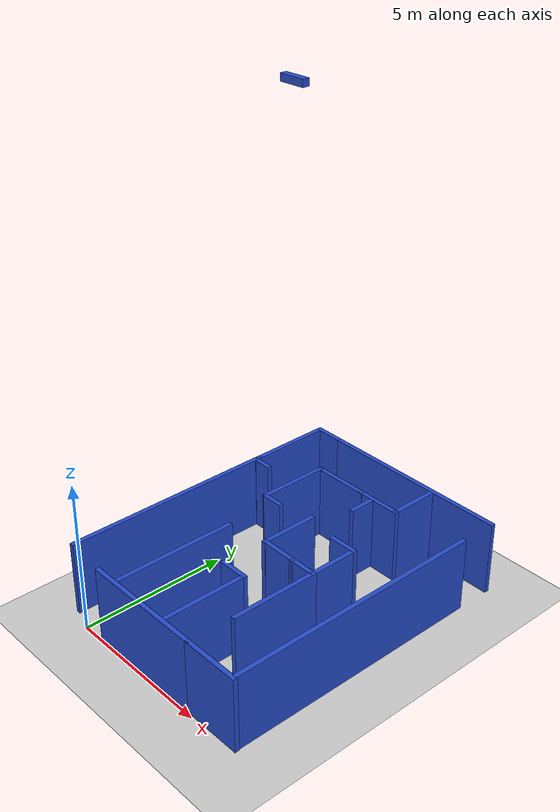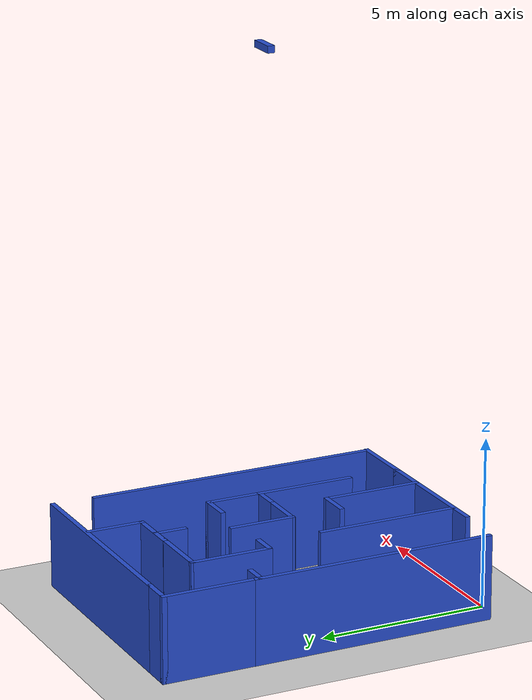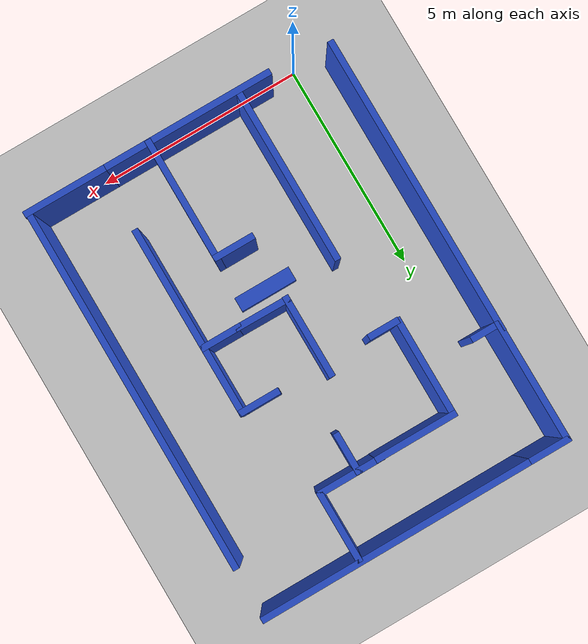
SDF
<sdf version="1.7">
 <world name="default">
  <light name="sun" type="directional">
   <pose>0 0 10 0 -0 0</pose>
   <diffuse>0.8 0.8 0.8 1</diffuse>
   <specular>0.2 0.2 0.2 1</specular>
   <attenuation>
    <range>1000</range>
    <constant>0.9</constant>
    <linear>0.01</linear>
    <quadratic>0.001</quadratic>
   </attenuation>
   <direction>-0.5 0.1 -0.9</direction>
   <spot><inner_angle>0</inner_angle><outer_angle>0</outer_angle><falloff>0</falloff></spot>
  </light>
  <model name="ground_plane">
   <static>1</static>
   <link name="link">
    <collision name="collision">
     <geometry><plane><normal>0 0 1</normal><size>100 100</size></plane></geometry>
     <surface><friction><ode><mu>100</mu><mu2>50</mu2></ode></friction></surface>
    </collision>
    <visual name="visual">
     <cast_shadows>0</cast_shadows>
     <geometry><plane><normal>0 0 1</normal><size>100 100</size></plane></geometry>
     <material>
      <script><uri>file://media/materials/scripts/gazebo.material</uri><name>Gazebo/Grey</name></script>
     </material>
    </visual>
   </link>
  </model>
  <gravity>0 0 -9.8</gravity>
  <magnetic_field>6e-06 2.3e-05 -4.2e-05</magnetic_field>
  <atmosphere type="adiabatic"/>
  <physics type="ode">
   <max_step_size>0.001</max_step_size>
   <real_time_factor>1</real_time_factor>
   <real_time_update_rate>1000</real_time_update_rate>
  </physics>
  <scene><ambient>0.4 0.4 0.4 1</ambient><background>0.7 0.7 0.7 1</background><shadows>0</shadows></scene>
  <spherical_coordinates>
   <surface_model>EARTH_WGS84</surface_model>
   <latitude_deg>0</latitude_deg>
   <longitude_deg>0</longitude_deg>
   <elevation>0</elevation>
   <heading_deg>0</heading_deg>
  </spherical_coordinates>
  <model name="mini">
   <link name="base_footprint">
    <inertial>
     <pose>0.007288 0 0.026334 0 -0 0</pose>
     <mass>0.77692</mass>
     <inertia>
      <ixx>0.000207</ixx>
      <ixy>-3.00927e-36</ixy>
      <ixz>-4.8e-05</ixz>
      <iyy>0.000474</iyy>
      <iyz>0</iyz>
      <izz>0.00056</izz>
     </inertia>
    </inertial>
    <collision name="base_footprint_fixed_joint_lump__base_link_collision">
     <pose>0 0 0.005 0 -0 0</pose>
     <geometry>
      <mesh>
       <scale>0.001 0.001 0.001</scale>
       <uri>file:///home/tune65/path_planning/install/mini_description/share/mini_description/meshes/base_link.stl</uri>
      </mesh>
     </geometry>
     <surface><friction><ode><mu>0.2</mu><mu2>0.2</mu2></ode></friction></surface>
    </collision>
    <visual name="base_footprint_fixed_joint_lump__base_link_visual">
     <pose>0 0 0.005 0 -0 0</pose>
     <geometry>
      <mesh>
       <scale>0.001 0.001 0.001</scale>
       <uri>file:///home/tune65/path_planning/install/mini_description/share/mini_description/meshes/base_link.stl</uri>
      </mesh>
     </geometry>
     <material>
      <script><name>Gazebo/Black</name><uri>file://media/materials/scripts/gazebo.material</uri></script>
     </material>
    </visual>
    <sensor name="Botcamera" type="camera">
     <update_rate>30</update_rate>
     <camera name="head">
      <horizontal_fov>1.39626</horizontal_fov>
      <image><width>800</width><height>800</height><format>R8G8B8</format></image>
      <clip><near>0.02</near><far>300</far></clip>
      <noise><type>gaussian</type><mean>0</mean><stddev>0.007</stddev></noise>
     </camera>
     <plugin name="camera_controller1" filename="libgazebo_ros_camera.so">
      <alwaysOn>1</alwaysOn>
      <updateRate>0.0</updateRate>
      <cameraName>/Botcamera</cameraName>
      <imageTopicName>image_raw</imageTopicName>
      <cameraInfoTopicName>camera_info</cameraInfoTopicName>
      <frameName>camera_link</frameName>
      <hackBaseline>0.07</hackBaseline>
     </plugin>
     <pose>-0.16 0 0.08 0 -0 3.14</pose>
    </sensor>
    <self_collide>1</self_collide>
   </link>
   <joint name="Revolute 3" type="revolute">
    <pose relative_to="base_footprint">-0.046999 0 0.005 0 -0 0</pose>
    <parent>base_footprint</parent>
    <child>wheel_c_1</child>
    <axis>
     <xyz>0 0 -1</xyz>
     <limit><lower>-1e+16</lower><upper>1e+16</upper></limit>
     <dynamics><spring_reference>0</spring_reference><spring_stiffness>0</spring_stiffness></dynamics>
    </axis>
   </joint>
   <link name="wheel_c_1">
    <pose relative_to="Revolute 3">0 0 0 0 -0 0</pose>
    <inertial>
     <pose>0 0 0.004297 0 -0 0</pose>
     <mass>0.00272313</mass>
     <inertia><ixx>0</ixx><ixy>0</ixy><ixz>0</ixz><iyy>0</iyy><iyz>0</iyz><izz>0</izz></inertia>
    </inertial>
    <collision name="wheel_c_1_collision">
     <pose>0.046999 0 0 0 -0 0</pose>
     <geometry>
      <mesh>
       <scale>0.001 0.001 0.001</scale>
       <uri>file:///home/tune65/path_planning/install/mini_description/share/mini_description/meshes/wheel_c_1.stl</uri>
      </mesh>
     </geometry>
     <surface><friction><ode><mu>0.2</mu><mu2>0.2</mu2></ode></friction></surface>
    </collision>
    <visual name="wheel_c_1_visual">
     <pose>0.046999 0 0 0 -0 0</pose>
     <geometry>
      <mesh>
       <scale>0.001 0.001 0.001</scale>
       <uri>file:///home/tune65/path_planning/install/mini_description/share/mini_description/meshes/wheel_c_1.stl</uri>
      </mesh>
     </geometry>
     <material>
      <script><name>Gazebo/White</name><uri>file://media/materials/scripts/gazebo.material</uri></script>
     </material>
    </visual>
    <self_collide>1</self_collide>
   </link>
   <joint name="Revolute 6" type="revolute">
    <pose relative_to="base_footprint">0.021999 -0.025 0.023 0 -0 0</pose>
    <parent>base_footprint</parent>
    <child>wheel_l_1</child>
    <axis>
     <xyz>0 -1 0</xyz>
     <limit><lower>-1e+16</lower><upper>1e+16</upper></limit>
     <dynamics><spring_reference>0</spring_reference><spring_stiffness>0</spring_stiffness></dynamics>
    </axis>
   </joint>
   <link name="wheel_l_1">
    <pose relative_to="Revolute 6">0 0 0 0 -0 0</pose>
    <inertial>
     <pose>-0 -0.003787 0 0 -0 0</pose>
     <mass>0.0240485</mass>
     <inertia><ixx>2e-06</ixx><ixy>0</ixy><ixz>0</ixz><iyy>4e-06</iyy><iyz>0</iyz><izz>2e-06</izz></inertia>
    </inertial>
    <collision name="wheel_l_1_collision">
     <pose>-0.021999 0.025 -0.018 0 -0 0</pose>
     <geometry>
      <mesh>
       <scale>0.001 0.001 0.001</scale>
       <uri>file:///home/tune65/path_planning/install/mini_description/share/mini_description/meshes/wheel_l_1.stl</uri>
      </mesh>
     </geometry>
     <surface><friction><ode><mu>0.2</mu><mu2>0.2</mu2></ode></friction></surface>
    </collision>
    <visual name="wheel_l_1_visual">
     <pose>-0.021999 0.025 -0.018 0 -0 0</pose>
     <geometry>
      <mesh>
       <scale>0.001 0.001 0.001</scale>
       <uri>file:///home/tune65/path_planning/install/mini_description/share/mini_description/meshes/wheel_l_1.stl</uri>
      </mesh>
     </geometry>
     <material>
      <script><name>Gazebo/Orange</name><uri>file://media/materials/scripts/gazebo.material</uri></script>
     </material>
    </visual>
    <self_collide>1</self_collide>
   </link>
   <joint name="Revolute 7" type="revolute">
    <pose relative_to="base_footprint">0.021999 0.025 0.023 0 -0 0</pose>
    <parent>base_footprint</parent>
    <child>wheel_r_1</child>
    <axis>
     <xyz>0 -1 0</xyz>
     <limit><lower>-1e+16</lower><upper>1e+16</upper></limit>
     <dynamics><spring_reference>0</spring_reference><spring_stiffness>0</spring_stiffness></dynamics>
    </axis>
   </joint>
   <link name="wheel_r_1">
    <pose relative_to="Revolute 7">0 0 0 0 -0 0</pose>
    <inertial>
     <pose>-0 0.003787 0 0 -0 0</pose>
     <mass>0.0240485</mass>
     <inertia><ixx>2e-06</ixx><ixy>0</ixy><ixz>0</ixz><iyy>4e-06</iyy><iyz>0</iyz><izz>2e-06</izz></inertia>
    </inertial>
    <collision name="wheel_r_1_collision">
     <pose>-0.021999 -0.025 -0.018 0 -0 0</pose>
     <geometry>
      <mesh>
       <scale>0.001 0.001 0.001</scale>
       <uri>file:///home/tune65/path_planning/install/mini_description/share/mini_description/meshes/wheel_r_1.stl</uri>
      </mesh>
     </geometry>
     <surface><friction><ode><mu>0.2</mu><mu2>0.2</mu2></ode></friction></surface>
    </collision>
    <visual name="wheel_r_1_visual">
     <pose>-0.021999 -0.025 -0.018 0 -0 0</pose>
     <geometry>
      <mesh>
       <scale>0.001 0.001 0.001</scale>
       <uri>file:///home/tune65/path_planning/install/mini_description/share/mini_description/meshes/wheel_r_1.stl</uri>
      </mesh>
     </geometry>
     <material>
      <script><name>Gazebo/Orange</name><uri>file://media/materials/scripts/gazebo.material</uri></script>
     </material>
    </visual>
    <self_collide>1</self_collide>
   </link>
   <static>0</static>
   <plugin name="gazebo_base_controller" filename="libgazebo_ros_diff_drive.so">
    <odometry_frame>odom</odometry_frame>
    <commandTopic>cmd_vel</commandTopic>
    <publish_odom>1</publish_odom>
    <publish_odom_tf>1</publish_odom_tf>
    <update_rate>30.0</update_rate>
    <left_joint>Revolute 6</left_joint>
    <right_joint>Revolute 7</right_joint>
    <wheel_separation>1.0</wheel_separation>
    <wheel_diameter>0.3</wheel_diameter>
    <max_wheel_acceleration>0.3</max_wheel_acceleration>
    <robotBaseFrame>base_link</robotBaseFrame>
   </plugin>
   <pose>0.000577 0.007429 -0.005523 -1.7e-05 -0.00021 -1.5727</pose>
  </model>
  <model name="Maze">
   <pose>2.94361 5.1356 0 0 -0 0</pose>
   <link name="Wall_21">
    <collision name="Wall_21_Collision">
     <geometry><box><size>4.25 0.15 2.5</size></box></geometry>
     <pose>0 0 1.25 0 -0 0</pose>
    </collision>
    <visual name="Wall_21_Visual">
     <pose>0 0 1.25 0 -0 0</pose>
     <geometry><box><size>4.25 0.15 2.5</size></box></geometry>
     <material>
      <script><uri>file://media/materials/scripts/gazebo.material</uri><name>Gazebo/Blue</name></script>
      <ambient>0.996078 0.47451 0.0196078 1</ambient>
     </material>
     <meta><layer>0</layer></meta>
    </visual>
    <pose>-0.166584 -4.99211 0 0 -0 0</pose>
   </link>
   <link name="Wall_23">
    <collision name="Wall_23_Collision">
     <geometry><box><size>4.25 0.15 2.5</size></box></geometry>
     <pose>0 0 1.25 0 -0 0</pose>
    </collision>
    <visual name="Wall_23_Visual">
     <pose>0 0 1.25 0 -0 0</pose>
     <geometry><box><size>4.25 0.15 2.5</size></box></geometry>
     <material>
      <script><uri>file://media/materials/scripts/gazebo.material</uri><name>Gazebo/Blue</name></script>
      <ambient>0 0 0 1</ambient>
     </material>
     <meta><layer>0</layer></meta>
    </visual>
    <pose>-1.47697 -2.88891 0 0 -0 1.5708</pose>
   </link>
   <link name="Wall_25">
    <collision name="Wall_25_Collision">
     <geometry><box><size>7.25 0.15 2.5</size></box></geometry>
     <pose>0 0 1.25 0 -0 0</pose>
    </collision>
    <visual name="Wall_25_Visual">
     <pose>0 0 1.25 0 -0 0</pose>
     <geometry><box><size>7.25 0.15 2.5</size></box></geometry>
     <material>
      <script><uri>file://media/materials/scripts/gazebo.material</uri><name>Gazebo/Blue</name></script>
      <ambient>0.996078 0.47451 0.0196078 1</ambient>
     </material>
     <meta><layer>0</layer></meta>
    </visual>
    <pose>-3.73341 -1.28759 0 0 -0 1.5708</pose>
   </link>
   <link name="Wall_30">
    <collision name="Wall_30_Collision">
     <geometry><box><size>0.75 0.15 2.5</size></box></geometry>
     <pose>0 0 1.25 0 -0 0</pose>
    </collision>
    <visual name="Wall_30_Visual">
     <pose>0 0 1.25 0 -0 0</pose>
     <geometry><box><size>0.75 0.15 2.5</size></box></geometry>
     <material>
      <script><uri>file://media/materials/scripts/gazebo.material</uri><name>Gazebo/Blue</name></script>
      <ambient>0 0 0 1</ambient>
     </material>
     <meta><layer>0</layer></meta>
    </visual>
    <pose>-1.56741 0.99221 0 0 -0 0</pose>
   </link>
   <link name="Wall_34">
    <collision name="Wall_34_Collision">
     <geometry><box><size>1.3428 0.15 2.5</size></box></geometry>
     <pose>0 0 1.25 0 -0 0</pose>
    </collision>
    <visual name="Wall_34_Visual">
     <pose>0 0 1.25 0 -0 0</pose>
     <geometry><box><size>1.3428 0.15 2.5</size></box></geometry>
     <material>
      <script><uri>file://media/materials/scripts/gazebo.material</uri><name>Gazebo/Blue</name></script>
      <ambient>0 0 0 1</ambient>
     </material>
     <meta><layer>0</layer></meta>
    </visual>
    <pose>0.487086 -0.59755 0 0 -0 -0.009643</pose>
   </link>
   <link name="Wall_35">
    <collision name="Wall_35_Collision">
     <geometry><box><size>1 0.15 2.5</size></box></geometry>
     <pose>0 0 1.25 0 -0 0</pose>
    </collision>
    <visual name="Wall_35_Visual">
     <pose>0 0 1.25 0 -0 0</pose>
     <geometry><box><size>1 0.15 2.5</size></box></geometry>
     <material>
      <script><uri>file://media/materials/scripts/gazebo.material</uri><name>Gazebo/Blue</name></script>
      <ambient>0 0 0 1</ambient>
     </material>
     <meta><layer>0</layer></meta>
    </visual>
    <pose>1.50837 -0.6033 0 0 -0 0</pose>
   </link>
   <link name="Wall_36">
    <collision name="Wall_36_Collision">
     <geometry><box><size>1.75 0.15 2.5</size></box></geometry>
     <pose>0 0 1.25 0 -0 0</pose>
    </collision>
    <visual name="Wall_36_Visual">
     <pose>0 0 1.25 0 -0 0</pose>
     <geometry><box><size>1.75 0.15 2.5</size></box></geometry>
     <material>
      <script><uri>file://media/materials/scripts/gazebo.material</uri><name>Gazebo/Blue</name></script>
      <ambient>0 0 0 1</ambient>
     </material>
     <meta><layer>0</layer></meta>
    </visual>
    <pose>1.93337 0.1967 0 0 -0 1.5708</pose>
   </link>
   <link name="Wall_37">
    <collision name="Wall_37_Collision">
     <geometry><box><size>1 0.15 2.5</size></box></geometry>
     <pose>0 0 1.25 0 -0 0</pose>
    </collision>
    <visual name="Wall_37_Visual">
     <pose>0 0 1.25 0 -0 0</pose>
     <geometry><box><size>1 0.15 2.5</size></box></geometry>
     <material>
      <script><uri>file://media/materials/scripts/gazebo.material</uri><name>Gazebo/Blue</name></script>
      <ambient>0 0 0 1</ambient>
     </material>
     <meta><layer>0</layer></meta>
    </visual>
    <pose>1.50837 0.9967 0 0 -0 3.14159</pose>
   </link>
   <link name="Wall_39">
    <collision name="Wall_39_Collision">
     <geometry><box><size>3 0.15 2.5</size></box></geometry>
     <pose>0 0 1.25 0 -0 0</pose>
    </collision>
    <visual name="Wall_39_Visual">
     <pose>0 0 1.25 0 -0 0</pose>
     <geometry><box><size>3 0.15 2.5</size></box></geometry>
     <material>
      <script><uri>file://media/materials/scripts/gazebo.material</uri><name>Gazebo/Blue</name></script>
      <ambient>0 0 0 1</ambient>
     </material>
     <meta><layer>0</layer></meta>
    </visual>
    <pose>1.93337 -2.0283 0 0 -0 -1.5708</pose>
   </link>
   <link name="Wall_41">
    <collision name="Wall_41_Collision">
     <geometry><box><size>3 0.15 2.5</size></box></geometry>
     <pose>0 0 1.25 0 -0 0</pose>
    </collision>
    <visual name="Wall_41_Visual">
     <pose>0 0 1.25 0 -0 0</pose>
     <geometry><box><size>3 0.15 2.5</size></box></geometry>
     <material>
      <script><uri>file://media/materials/scripts/gazebo.material</uri><name>Gazebo/Blue</name></script>
      <ambient>0 0 0 1</ambient>
     </material>
     <meta><layer>0</layer></meta>
    </visual>
    <pose>0.727679 -3.55281 0 0 -0 1.5708</pose>
   </link>
   <link name="Wall_43">
    <collision name="Wall_43_Collision">
     <geometry><box><size>1 0.15 2.5</size></box></geometry>
     <pose>0 0 1.25 0 -0 0</pose>
    </collision>
    <visual name="Wall_43_Visual">
     <pose>0 0 1.25 0 -0 0</pose>
     <geometry><box><size>1 0.15 2.5</size></box></geometry>
     <material>
      <script><uri>file://media/materials/scripts/gazebo.material</uri><name>Gazebo/Blue</name></script>
      <ambient>0 0 0 1</ambient>
     </material>
     <meta><layer>0</layer></meta>
    </visual>
    <pose>0.302679 -2.12782 0 0 -0 3.14159</pose>
   </link>
   <link name="Wall_46">
    <collision name="Wall_46_Collision">
     <geometry><box><size>1.64061 0.15 2.5</size></box></geometry>
     <pose>0 0 1.25 0 -0 0</pose>
    </collision>
    <visual name="Wall_46_Visual">
     <pose>0 0 1.25 0 -0 0</pose>
     <geometry><box><size>1.64061 0.15 2.5</size></box></geometry>
     <material>
      <script><uri>file://media/materials/scripts/gazebo.material</uri><name>Gazebo/Blue</name></script>
      <ambient>0 0 0 1</ambient>
     </material>
     <meta><layer>0</layer></meta>
    </visual>
    <pose>0.633461 3.31645 0 0 -0 0</pose>
   </link>
   <link name="Wall_52">
    <collision name="Wall_52_Collision">
     <geometry><box><size>2.44702 0.15 2.5</size></box></geometry>
     <pose>0 0 1.25 0 -0 0</pose>
    </collision>
    <visual name="Wall_52_Visual">
     <pose>0 0 1.25 0 -0 0</pose>
     <geometry><box><size>2.44702 0.15 2.5</size></box></geometry>
     <material>
      <script><uri>file://media/materials/scripts/gazebo.material</uri><name>Gazebo/Blue</name></script>
      <ambient>0 0 0 1</ambient>
     </material>
     <meta><layer>0</layer></meta>
    </visual>
    <pose>-1.91791 2.16081 0 0 -0 1.56844</pose>
   </link>
   <link name="Wall_53">
    <collision name="Wall_53_Collision">
     <geometry><box><size>2 0.15 2.5</size></box></geometry>
     <pose>0 0 1.25 0 -0 0</pose>
    </collision>
    <visual name="Wall_53_Visual">
     <pose>0 0 1.25 0 -0 0</pose>
     <geometry><box><size>2 0.15 2.5</size></box></geometry>
     <material>
      <script><uri>file://media/materials/scripts/gazebo.material</uri><name>Gazebo/Blue</name></script>
      <ambient>0 0 0 1</ambient>
     </material>
     <meta><layer>0</layer></meta>
    </visual>
    <pose>-0.99021 3.30921 0 0 -0 0</pose>
   </link>
   <link name="Wall_61">
    <collision name="Wall_61_Collision">
     <geometry><box><size>1 0.15 2.5</size></box></geometry>
     <pose>0 0 1.25 0 -0 0</pose>
    </collision>
    <visual name="Wall_61_Visual">
     <pose>0 0 1.25 0 -0 0</pose>
     <geometry><box><size>1 0.15 2.5</size></box></geometry>
     <material>
      <script><uri>file://media/materials/scripts/gazebo.material</uri><name>Gazebo/Blue</name></script>
      <ambient>0.996078 0.47451 0.0196078 1</ambient>
     </material>
     <meta><layer>0</layer></meta>
    </visual>
    <pose>-3.30144 4.99211 0 0 -0 3.14159</pose>
   </link>
   <link name="Wall_63">
    <collision name="Wall_63_Collision">
     <geometry><box><size>3 0.15 2.5</size></box></geometry>
     <pose>0 0 1.25 0 -0 0</pose>
    </collision>
    <visual name="Wall_63_Visual">
     <pose>0 0 1.25 0 -0 0</pose>
     <geometry><box><size>3 0.15 2.5</size></box></geometry>
     <material>
      <script><uri>file://media/materials/scripts/gazebo.material</uri><name>Gazebo/Blue</name></script>
      <ambient>0.996078 0.47451 0.0196078 1</ambient>
     </material>
     <meta><layer>0</layer></meta>
    </visual>
    <pose>-3.72644 3.56711 0 0 -0 -1.5708</pose>
   </link>
   <link name="Wall_65">
    <collision name="Wall_65_Collision">
     <geometry><box><size>6.75 0.15 2.5</size></box></geometry>
     <pose>0 0 1.25 0 -0 0</pose>
    </collision>
    <visual name="Wall_65_Visual">
     <pose>0 0 1.25 0 -0 0</pose>
     <geometry><box><size>6.75 0.15 2.5</size></box></geometry>
     <material>
      <script><uri>file://media/materials/scripts/gazebo.material</uri><name>Gazebo/Blue</name></script>
      <ambient>0.996078 0.47451 0.0196078 1</ambient>
     </material>
     <meta><layer>0</layer></meta>
    </visual>
    <pose>0.42356 4.99211 0 0 -0 0</pose>
   </link>
   <link name="Wall_67">
    <collision name="Wall_67_Collision">
     <geometry><box><size>8.75 0.15 2.5</size></box></geometry>
     <pose>0 0 1.25 0 -0 0</pose>
    </collision>
    <visual name="Wall_67_Visual">
     <pose>0 0 1.25 0 -0 0</pose>
     <geometry><box><size>8.75 0.15 2.5</size></box></geometry>
     <material>
      <script><uri>file://media/materials/scripts/gazebo.material</uri><name>Gazebo/Blue</name></script>
      <ambient>0.996078 0.47451 0.0196078 1</ambient>
     </material>
     <meta><layer>0</layer></meta>
    </visual>
    <pose>3.70855 -0.575644 0 0 -0 -1.5708</pose>
   </link>
   <link name="Wall_69">
    <collision name="Wall_69_Collision">
     <geometry><box><size>2 0.15 2.5</size></box></geometry>
     <pose>0 0 1.25 0 -0 0</pose>
    </collision>
    <visual name="Wall_69_Visual">
     <pose>0 0 1.25 0 -0 0</pose>
     <geometry><box><size>2 0.15 2.5</size></box></geometry>
     <material>
      <script><uri>file://media/materials/scripts/gazebo.material</uri><name>Gazebo/Blue</name></script>
      <ambient>0.996078 0.47451 0.0196078 1</ambient>
     </material>
     <meta><layer>0</layer></meta>
    </visual>
    <pose>2.80842 -4.99211 0 0 -0 0</pose>
   </link>
   <link name="Wall_71">
    <collision name="Wall_71_Collision">
     <geometry><box><size>0.75 0.15 2.5</size></box></geometry>
     <pose>0 0 1.25 0 -0 0</pose>
    </collision>
    <visual name="Wall_71_Visual">
     <pose>0 0 1.25 0 -0 0</pose>
     <geometry><box><size>0.75 0.15 2.5</size></box></geometry>
     <material>
      <script><uri>file://media/materials/scripts/gazebo.material</uri><name>Gazebo/Blue</name></script>
      <ambient>0 0 0 1</ambient>
     </material>
     <meta><layer>0</layer></meta>
    </visual>
    <pose>-3.42644 2.14211 0 0 -0 0</pose>
   </link>
   <link name="Wall_73">
    <collision name="Wall_73_Collision">
     <geometry><box><size>2 0.15 2.5</size></box></geometry>
     <pose>0 0 1.25 0 -0 0</pose>
    </collision>
    <visual name="Wall_73_Visual">
     <pose>0 0 1.25 0 -0 0</pose>
     <geometry><box><size>2 0.15 2.5</size></box></geometry>
     <material>
      <script><uri>file://media/materials/scripts/gazebo.material</uri><name>Gazebo/Blue</name></script>
      <ambient>0 0 0 1</ambient>
     </material>
     <meta><layer>0</layer></meta>
    </visual>
    <pose>-0.109202 0.3217 0 0 -0 1.5708</pose>
   </link>
   <link name="Wall_79">
    <collision name="Wall_79_Collision">
     <geometry><box><size>1.75 0.15 2.5</size></box></geometry>
     <pose>0 0 1.25 0 -0 0</pose>
    </collision>
    <visual name="Wall_79_Visual">
     <pose>0 0 1.25 0 -0 0</pose>
     <geometry><box><size>1.75 0.15 2.5</size></box></geometry>
     <material>
      <script><uri>file://media/materials/scripts/gazebo.material</uri><name>Gazebo/Blue</name></script>
      <ambient>0 0 0 1</ambient>
     </material>
     <meta><layer>0</layer></meta>
    </visual>
    <pose>1.37874 4.11646 0 0 -0 1.5708</pose>
   </link>
   <link name="Wall_81">
    <collision name="Wall_81_Collision">
     <geometry><box><size>1 0.15 2.5</size></box></geometry>
     <pose>0 0 1.25 0 -0 0</pose>
    </collision>
    <visual name="Wall_81_Visual">
     <pose>0 0 1.25 0 -0 0</pose>
     <geometry><box><size>1 0.15 2.5</size></box></geometry>
     <material>
      <script><uri>file://media/materials/scripts/gazebo.material</uri><name>Gazebo/Blue</name></script>
      <ambient>0 0 0 1</ambient>
     </material>
     <meta><layer>0</layer></meta>
    </visual>
    <pose>0.438493 2.88286 0 0 -0 -1.5708</pose>
   </link>
   <static>1</static>
  </model>
  <model name="satellite">
   <link name="link_0">
    <inertial>
     <mass>1</mass>
     <inertia>
      <ixx>0.166667</ixx>
      <ixy>0</ixy>
      <ixz>0</ixz>
      <iyy>0.166667</iyy>
      <iyz>0</iyz>
      <izz>0.166667</izz>
     </inertia>
    </inertial>
    <pose>0 2e-06 4.4e-05 0 -0 0</pose>
    <visual name="visual">
     <geometry><box><size>0.8 0.2 0.2</size></box></geometry>
     <material>
      <lighting>1</lighting>
      <script><uri>file://media/materials/scripts/gazebo.material</uri><name>Gazebo/Blue</name></script>
      <shader type="pixel"><normal_map>__default__</normal_map></shader>
      <ambient>0.3 0.3 0.3 1</ambient>
      <diffuse>0.7 0.7 0.7 1</diffuse>
      <specular>0.01 0.01 0.01 1</specular>
      <emissive>0 0 0 1</emissive>
     </material>
     <cast_shadows>0</cast_shadows>
    </visual>
    <collision name="collision">
     <geometry><box><size>0.8 0.2 0.2</size></box></geometry>
     <surface>
      <friction>
       <ode><mu>1</mu><mu2>1</mu2><fdir1>0 0 0</fdir1><slip1>0</slip1><slip2>0</slip2></ode>
       <torsional>
        <coefficient>1</coefficient>
        <patch_radius>0</patch_radius>
        <surface_radius>0</surface_radius>
        <use_patch_radius>1</use_patch_radius>
        <ode><slip>0</slip></ode>
       </torsional>
      </friction>
      <bounce><restitution_coefficient>0</restitution_coefficient><threshold>1e+06</threshold></bounce>
      <contact>
       <collide_without_contact>0</collide_without_contact>
       <collide_without_contact_bitmask>1</collide_without_contact_bitmask>
       <collide_bitmask>1</collide_bitmask>
       <ode>
        <soft_cfm>0</soft_cfm>
        <soft_erp>0.2</soft_erp>
        <kp>1e+13</kp>
        <kd>1</kd>
        <max_vel>0.01</max_vel>
        <min_depth>0</min_depth>
       </ode>
       <bullet>
        <split_impulse>1</split_impulse>
        <split_impulse_penetration_threshold>-0.01</split_impulse_penetration_threshold>
        <soft_cfm>0</soft_cfm>
        <soft_erp>0.2</soft_erp>
        <kp>1e+13</kp>
        <kd>1</kd>
       </bullet>
      </contact>
     </surface>
    </collision>
    <sensor name="upper_camera" type="camera">
     <pose>0 0 0 0 1.57 0</pose>
     <update_rate>30</update_rate>
     <visualize>1</visualize>
     <camera name="head">
      <horizontal_fov>1.0856</horizontal_fov>
      <image><width>1280</width><height>720</height><format>R8G8B8</format></image>
      <clip><near>0.03</near><far>100</far></clip>
      <noise><type>gaussian</type><mean>0</mean><stddev>0.007</stddev></noise>
     </camera>
     <plugin name="camera_controller" filename="libgazebo_ros_camera.so">
      <alwaysOn>1</alwaysOn>
      <updateRate>0.0</updateRate>
      <cameraName>rrbot/camera1</cameraName>
      <imageTopicName>image_raw</imageTopicName>
      <cameraInfoTopicName>camera_info</cameraInfoTopicName>
      <frameName>camera_link</frameName>
      <hackBaseline>0.07</hackBaseline>
      <distortionK1>0.0</distortionK1>
      <distortionK2>0.0</distortionK2>
      <distortionK3>0.0</distortionK3>
      <distortionT1>0.0</distortionT1>
      <distortionT2>0.0</distortionT2>
     </plugin>
    </sensor>
   </link>
   <static>1</static>
   <pose>3.39255 5.10698 15.8624 0 -0 0</pose>
  </model>
  <audio><device>default</device></audio>
 </world>
</sdf>
